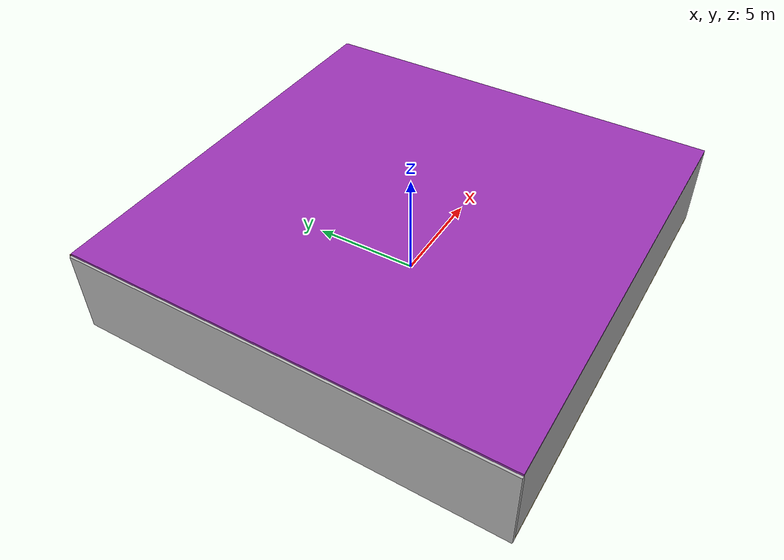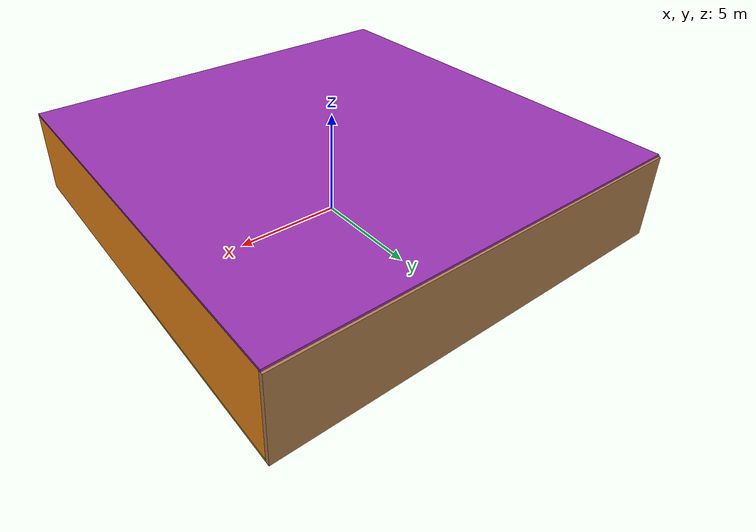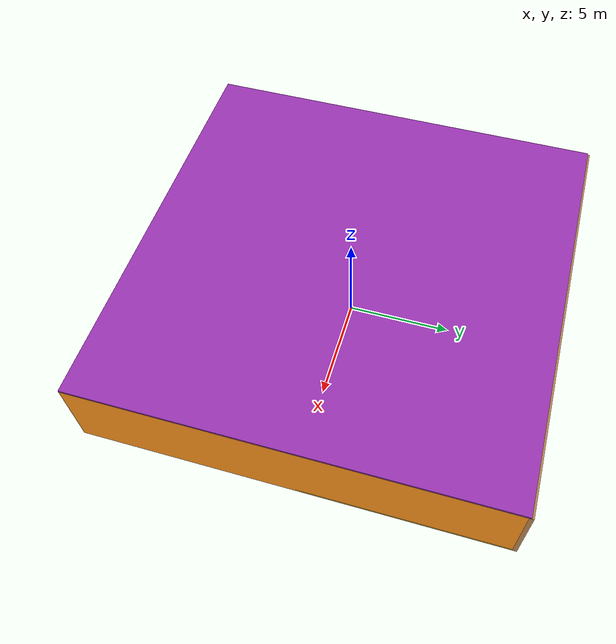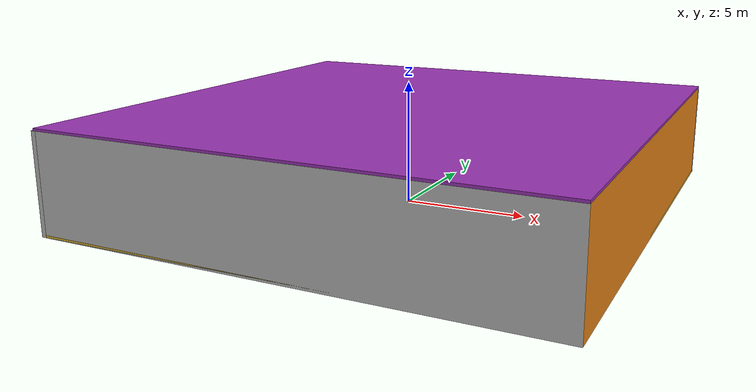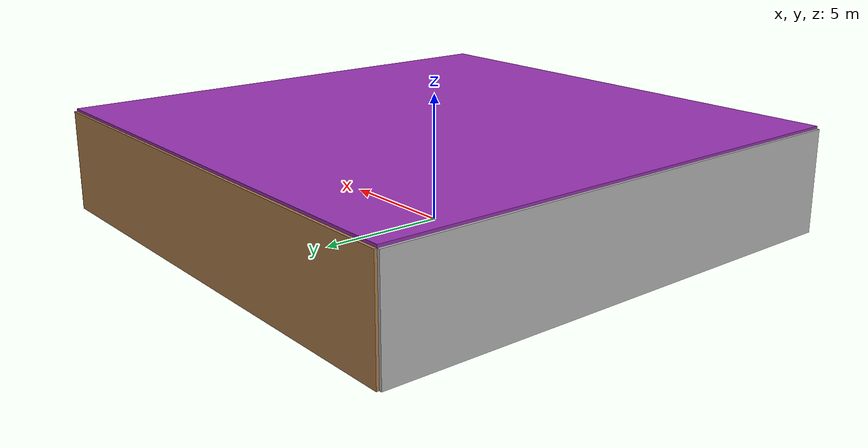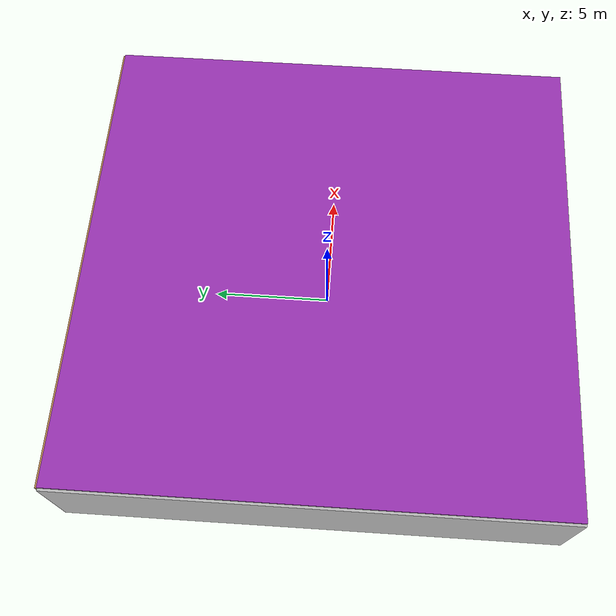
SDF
<sdf version="1.4">
 <world name="default">
  <physics type="ode">
   <max_step_size>0.001</max_step_size>
   <real_time_factor>1</real_time_factor>
   <real_time_update_rate>1000</real_time_update_rate>
   <gravity>0 0 -9.8</gravity>
  </physics>
  <scene><ambient>0.4 0.4 0.4 1</ambient><background>0.7 0.7 0.7 1</background><shadows>1</shadows></scene>
  <model name="Surrounding">
   <static>1</static>
   <link name="Ceiling">
    <collision name="Ceiling_Collision"><geometry><box><size>20 20 0.1</size></box></geometry></collision>
    <visual name="Ceiling_Visual">
     <geometry><box><size>20 20 0.1</size></box></geometry>
     <material>
      <script><uri>file://media/materials/scripts/gazebo.material</uri><name>Gazebo/PurpleGlow</name></script>
     </material>
    </visual>
    <pose>0 0 4.05 0 0 0</pose>
   </link>
   <link name="Wall_South">
    <collision name="Wall_South_Collision">
     <geometry><box><size>20 0 4</size></box></geometry>
     <pose>0 0 2 0 -0 0</pose>
    </collision>
    <visual name="Wall_South_Visual">
     <pose>0 0 2 0 -0 0</pose>
     <geometry><box><size>20 0 4</size></box></geometry>
     <material>
      <script><uri>file://media/materials/scripts/gazebo.material</uri><name>Gazebo/PioneerBody</name></script>
     </material>
    </visual>
    <velocity_decay><linear>0</linear><angular>0</angular></velocity_decay>
    <pose>0 -10 0 0 -0 0</pose>
   </link>
   <link name="Wall_East">
    <collision name="Wall_21_Collision">
     <geometry><box><size>20 0 4</size></box></geometry>
     <pose>0 0 2 0 -0 0</pose>
    </collision>
    <visual name="Wall_21_Visual">
     <pose>0 0 2 0 -0 0</pose>
     <geometry><box><size>20 0 4</size></box></geometry>
     <material>
      <script><uri>file://media/materials/scripts/gazebo.material</uri><name>Gazebo/Orange</name></script>
     </material>
    </visual>
    <velocity_decay><linear>0</linear><angular>0</angular></velocity_decay>
    <pose>10 0 0 0 -0 1.5708</pose>
   </link>
   <link name="Wall_North">
    <collision name="Wall_22_Collision">
     <geometry><box><size>20 0.2 4</size></box></geometry>
     <pose>0 0 2 0 -0 0</pose>
    </collision>
    <visual name="Wall_22_Visual">
     <pose>0 0 2 0 -0 0</pose>
     <geometry><box><size>20 0.2 4</size></box></geometry>
     <material>
      <script><uri>file://media/materials/scripts/gazebo.material</uri><name>Gazebo/WoodFloor</name></script>
     </material>
    </visual>
    <velocity_decay><linear>0</linear><angular>0</angular></velocity_decay>
    <pose>0 10 0 0 -0 0</pose>
   </link>
   <link name="Wall_West">
    <collision name="Wall_23_Collision">
     <geometry><box><size>20 0.2 4</size></box></geometry>
     <pose>0 0 2 0 -0 0</pose>
    </collision>
    <visual name="Wall_23_Visual">
     <pose>0 0 2 0 -0 0</pose>
     <geometry><box><size>20 0.2 4</size></box></geometry>
     <material>
      <script><uri>file://media/materials/scripts/gazebo.material</uri><name>Gazebo/PioneerBody</name></script>
     </material>
    </visual>
    <velocity_decay><linear>0</linear><angular>0</angular></velocity_decay>
    <pose>-10 0 0 0 0 -1.5708</pose>
   </link>
   <link name="Ground_link">
    <collision name="collision">
     <pose>0 0 .05 0 -0 0</pose>
     <geometry><box><size>20 20 0.1</size></box></geometry>
    </collision>
    <visual name="visual">
     <pose>0 0 .05 0 -0 0</pose>
     <geometry><box><size>20 20 0.1</size></box></geometry>
     <material>
      <script><uri>file://media/materials/scripts/gazebo.material</uri><name>Gazebo/Gold</name></script>
     </material>
    </visual>
   </link>
   <static>1</static>
  </model>
  <spherical_coordinates>
   <surface_model>EARTH_WGS84</surface_model>
   <latitude_deg>0</latitude_deg>
   <longitude_deg>0</longitude_deg>
   <elevation>0</elevation>
   <heading_deg>0</heading_deg>
  </spherical_coordinates>
  <light name="lightball_0" type="diffuse">
   <diffuse>0.8 0.8 0.8 1</diffuse>
   <specular>0.2 0.2 0.2 1</specular>
   <attenuation>
    <range>100</range>
    <constant>0.7</constant>
    <linear>0.01</linear>
    <quadratic>0.001</quadratic>
   </attenuation>
   <direction>-0.5 0.1 -0.9</direction>
   <pose>-9.57350012963 -2.24843688439 1.62047453617 0 0 0</pose>
  </light>
  <light name="lightball_1" type="diffuse">
   <diffuse>0.8 0.8 0.8 1</diffuse>
   <specular>0.2 0.2 0.2 1</specular>
   <attenuation>
    <range>100</range>
    <constant>0.7</constant>
    <linear>0.01</linear>
    <quadratic>0.001</quadratic>
   </attenuation>
   <direction>-0.5 0.1 -0.9</direction>
   <pose>-3.5691387432 -5.0201121093 3.70915215766 0 0 0</pose>
  </light>
  <light name="lightball_2" type="diffuse">
   <diffuse>0.8 0.8 0.8 1</diffuse>
   <specular>0.2 0.2 0.2 1</specular>
   <attenuation>
    <range>100</range>
    <constant>0.7</constant>
    <linear>0.01</linear>
    <quadratic>0.001</quadratic>
   </attenuation>
   <direction>-0.5 0.1 -0.9</direction>
   <pose>7.22936966741 -8.84859737223 3.62430818775 0 0 0</pose>
  </light>
  <light name="lightball_3" type="diffuse">
   <diffuse>0.8 0.8 0.8 1</diffuse>
   <specular>0.2 0.2 0.2 1</specular>
   <attenuation>
    <range>100</range>
    <constant>0.7</constant>
    <linear>0.01</linear>
    <quadratic>0.001</quadratic>
   </attenuation>
   <direction>-0.5 0.1 -0.9</direction>
   <pose>-1.85133625251 1.42504649111 1.35709337241 0 0 0</pose>
  </light>
  <light name="lightball_4" type="diffuse">
   <diffuse>0.8 0.8 0.8 1</diffuse>
   <specular>0.2 0.2 0.2 1</specular>
   <attenuation>
    <range>100</range>
    <constant>0.7</constant>
    <linear>0.01</linear>
    <quadratic>0.001</quadratic>
   </attenuation>
   <direction>-0.5 0.1 -0.9</direction>
   <pose>7.5147246706 -5.02907681579 2.84712631463 0 0 0</pose>
  </light>
  <light name="lightball_5" type="diffuse">
   <diffuse>0.8 0.8 0.8 1</diffuse>
   <specular>0.2 0.2 0.2 1</specular>
   <attenuation>
    <range>100</range>
    <constant>0.7</constant>
    <linear>0.01</linear>
    <quadratic>0.001</quadratic>
   </attenuation>
   <direction>-0.5 0.1 -0.9</direction>
   <pose>8.66503740796 8.61407919425 3.31346614705 0 0 0</pose>
  </light>
  <light name="lightball_6" type="diffuse">
   <diffuse>0.8 0.8 0.8 1</diffuse>
   <specular>0.2 0.2 0.2 1</specular>
   <attenuation>
    <range>100</range>
    <constant>0.7</constant>
    <linear>0.01</linear>
    <quadratic>0.001</quadratic>
   </attenuation>
   <direction>-0.5 0.1 -0.9</direction>
   <pose>-1.71244452992 6.05288734854 3.30867330348 0 0 0</pose>
  </light>
  <light name="lightball_7" type="diffuse">
   <diffuse>0.8 0.8 0.8 1</diffuse>
   <specular>0.2 0.2 0.2 1</specular>
   <attenuation>
    <range>100</range>
    <constant>0.7</constant>
    <linear>0.01</linear>
    <quadratic>0.001</quadratic>
   </attenuation>
   <direction>-0.5 0.1 -0.9</direction>
   <pose>-4.47916818247 -4.40948229095 0.923774303915 0 0 0</pose>
  </light>
  <light name="lightball_8" type="diffuse">
   <diffuse>0.8 0.8 0.8 1</diffuse>
   <specular>0.2 0.2 0.2 1</specular>
   <attenuation>
    <range>100</range>
    <constant>0.7</constant>
    <linear>0.01</linear>
    <quadratic>0.001</quadratic>
   </attenuation>
   <direction>-0.5 0.1 -0.9</direction>
   <pose>0.647188253754 -9.36541328113 1.08436232012 0 0 0</pose>
  </light>
  <light name="lightball_9" type="diffuse">
   <diffuse>0.8 0.8 0.8 1</diffuse>
   <specular>0.2 0.2 0.2 1</specular>
   <attenuation>
    <range>100</range>
    <constant>0.7</constant>
    <linear>0.01</linear>
    <quadratic>0.001</quadratic>
   </attenuation>
   <direction>-0.5 0.1 -0.9</direction>
   <pose>6.1547536509 0.726141270934 2.2971909274 0 0 0</pose>
  </light>
  <include><uri>model://table</uri><pose>3.96205330994 1.82586546108 0 0 0 2.95034295284</pose></include>
  <include>
   <uri>model://robocup_3Dsim_goal</uri>
   <pose>7.0887078707 -6.77376050575 0 0 0 0.412515226607</pose>
  </include>
 </world>
</sdf>

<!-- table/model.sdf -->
<sdf version="1.5">
  <model name="table">
    <static>true</static>
    <link name="link">
      <collision name="surface">
        <pose>0 0 1.0 0 0 0</pose>
        <geometry>
          <box>
            <size>1.5 0.8 0.03</size>
          </box>
        </geometry>
        <surface>
          <friction>
            <ode>
              <mu>0.6</mu>
              <mu2>0.6</mu2>
            </ode>
          </friction>
        </surface>
      </collision>
      <visual name="visual1">
        <pose>0 0 1.0 0 0 0</pose>
        <geometry>
          <box>
            <size>1.5 0.8 0.03</size>
          </box>
        </geometry>
        <material>
          <script>
            <uri>model://media/materials/scripts/gazebo.material</uri>
            <name>Gazebo/Wood</name>
          </script>
        </material>
      </visual>
      <collision name="front_left_leg">
        <pose>0.68 0.38 0.5 0 0 0</pose>
        <geometry>
          <cylinder>
            <radius>0.02</radius>
            <length>1.0</length>
          </cylinder>
        </geometry>
      </collision>
      <visual name="front_left_leg">
        <pose>0.68 0.38 0.5 0 0 0</pose>
        <geometry>
          <cylinder>
            <radius>0.02</radius>
            <length>1.0</length>
          </cylinder>
        </geometry>
        <material>
          <script>
            <uri>model://media/materials/scripts/gazebo.material</uri>
            <name>Gazebo/Grey</name>
          </script>
        </material>
      </visual>
      <collision name="front_right_leg">
        <pose>0.68 -0.38 0.5 0 0 0</pose>
        <geometry>
          <cylinder>
            <radius>0.02</radius>
            <length>1.0</length>
          </cylinder>
        </geometry>
      </collision>
      <visual name="front_right_leg">
        <pose>0.68 -0.38 0.5 0 0 0</pose>
        <geometry>
          <cylinder>
            <radius>0.02</radius>
            <length>1.0</length>
          </cylinder>
        </geometry>
        <material>
          <script>
            <uri>model://media/materials/scripts/gazebo.material</uri>
            <name>Gazebo/Grey</name>
          </script>
        </material>
      </visual>
      <collision name="back_right_leg">
        <pose>-0.68 -0.38 0.5 0 0 0</pose>
        <geometry>
          <cylinder>
            <radius>0.02</radius>
            <length>1.0</length>
          </cylinder>
        </geometry>
      </collision>
      <visual name="back_right_leg">
        <pose>-0.68 -0.38 0.5 0 0 0</pose>
        <geometry>
          <cylinder>
            <radius>0.02</radius>
            <length>1.0</length>
          </cylinder>
        </geometry>
        <material>
          <script>
            <uri>model://media/materials/scripts/gazebo.material</uri>
            <name>Gazebo/Grey</name>
          </script>
        </material>
      </visual>
      <collision name="back_left_leg">
        <pose>-0.68 0.38 0.5 0 0 0</pose>
        <geometry>
          <cylinder>
            <radius>0.02</radius>
            <length>1.0</length>
          </cylinder>
        </geometry>
      </collision>
      <visual name="back_left_leg">
        <pose>-0.68 0.38 0.5 0 0 0</pose>
        <geometry>
          <cylinder>
            <radius>0.02</radius>
            <length>1.0</length>
          </cylinder>
        </geometry>
        <material>
          <script>
            <uri>model://media/materials/scripts/gazebo.material</uri>
            <name>Gazebo/Grey</name>
          </script>
        </material>
      </visual>
    </link>
  </model>
</sdf>

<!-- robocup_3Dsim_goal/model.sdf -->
<sdf version="1.5">
  <model name="robocup_3d_goal">
    <static>true</static>
    <link name="left_post">
      <pose>0 1.05 0.45 0 0 0</pose>
      <collision name="collision">
        <geometry>
          <cylinder>
            <radius>0.05</radius>
            <length>0.9</length>
          </cylinder>
        </geometry>
      </collision>
      <visual name="visual">
        <geometry>
          <cylinder>
            <radius>0.05</radius>
            <length>0.9</length>
          </cylinder>
        </geometry>
        <material>
          <script>
            <uri>file://media/materials/scripts/gazebo.material</uri>
            <name>Gazebo/ZincYellow</name>
          </script>
        </material>
      </visual>
    </link>
    <link name="left_support_horiz_lower">
      <pose>0.30 1.05 0.01 0 0 0</pose>
      <collision name="collision">
        <geometry>
          <box>
            <size>0.50 0.02 0.02</size>
          </box>
        </geometry>
      </collision>
      <visual name="visual">
        <geometry>
          <box>
            <size>0.50 0.02 0.02</size>
          </box>
        </geometry>
        <material>
          <script>
            <uri>file://media/materials/scripts/gazebo.material</uri>
            <name>Gazebo/White</name>
          </script>
        </material>
      </visual>
    </link>
    <link name="left_support_horiz_upper">
      <pose>0.30 1.05 0.79 0 0 0</pose>
      <collision name="collision">
        <geometry>
          <box>
            <size>0.50 0.02 0.02</size>
          </box>
        </geometry>
      </collision>
      <visual name="visual">
        <geometry>
          <box>
            <size>0.50 0.02 0.02</size>
          </box>
        </geometry>
        <material>
          <script>
            <uri>file://media/materials/scripts/gazebo.material</uri>
            <name>Gazebo/White</name>
          </script>
        </material>
      </visual>
    </link>
    <link name="left_support_vertical">
      <pose>0.56 1.05 0.4 0 1.5708 0</pose>
      <collision name="collision">
        <geometry>
          <box>
            <size>0.80 0.02 0.02</size>
          </box>
        </geometry>
      </collision>
      <visual name="visual">
        <geometry>
          <box>
            <size>0.80 0.02 0.02</size>
          </box>
        </geometry>
        <material>
          <script>
            <uri>file://media/materials/scripts/gazebo.material</uri>
            <name>Gazebo/White</name>
          </script>
        </material>
      </visual>
    </link>
    <link name="right_support_horiz_lower">
      <pose>0.30 -1.05 0.01 0 0 0</pose>
      <collision name="collision">
        <geometry>
          <box>
            <size>0.50 0.02 0.02</size>
          </box>
        </geometry>
      </collision>
      <visual name="visual">
        <geometry>
          <box>
            <size>0.50 0.02 0.02</size>
          </box>
        </geometry>
        <material>
          <script>
            <uri>file://media/materials/scripts/gazebo.material</uri>
            <name>Gazebo/White</name>
          </script>
        </material>
      </visual>
    </link>
    <link name="right_support_horiz_upper">
      <pose>0.30 -1.05 0.79 0 0 0</pose>
      <collision name="collision">
        <geometry>
          <box>
            <size>0.50 0.02 0.02</size>
          </box>
        </geometry>
      </collision>
      <visual name="visual">
        <geometry>
          <box>
            <size>0.50 0.02 0.02</size>
          </box>
        </geometry>
        <material>
          <script>
            <uri>file://media/materials/scripts/gazebo.material</uri>
            <name>Gazebo/White</name>
          </script>
        </material>
      </visual>
    </link>
    <link name="right_support_vertical">
      <pose>0.56 -1.05 0.4 0 1.5708 0</pose>
      <collision name="collision">
        <geometry>
          <box>
            <size>0.80 0.02 0.02</size>
          </box>
        </geometry>
      </collision>
      <visual name="visual">
        <geometry>
          <box>
            <size>0.80 0.02 0.02</size>
          </box>
        </geometry>
        <material>
          <script>
            <uri>file://media/materials/scripts/gazebo.material</uri>
            <name>Gazebo/White</name>
          </script>
        </material>
      </visual>
    </link>
    <link name="center_support_horiz_lower">
      <pose>0.56 0 0.01 0 1.5708 0</pose>
      <collision name="collision">
        <geometry>
          <box>
            <size>0.02 2.08 0.02</size>
          </box>
        </geometry>
      </collision>
      <visual name="visual">
        <geometry>
          <box>
            <size>0.02 2.08 0.02</size>
          </box>
        </geometry>
        <material>
          <script>
            <uri>file://media/materials/scripts/gazebo.material</uri>
            <name>Gazebo/White</name>
          </script>
        </material>
      </visual>
    </link>
    <link name="center_support_horiz_upper">
      <pose>0.56 0 0.79 0 1.5708 0</pose>
      <collision name="collision">
        <geometry>
          <box>
            <size>0.02 2.08 0.02</size>
          </box>
        </geometry>
      </collision>
      <visual name="visual">
        <geometry>
          <box>
            <size>0.02 2.08 0.02</size>
          </box>
        </geometry>
        <material>
          <script>
            <uri>file://media/materials/scripts/gazebo.material</uri>
            <name>Gazebo/White</name>
          </script>
        </material>
      </visual>
    </link>
    <link name="right_post">
      <pose>0 -1.05 0.45 0 0 0</pose>
      <collision name="collision">
        <geometry>
          <cylinder>
            <radius>0.05</radius>
            <length>0.9</length>
          </cylinder>
        </geometry>
      </collision>
      <visual name="visual">
        <geometry>
          <cylinder>
            <radius>0.05</radius>
            <length>0.9</length>
          </cylinder>
        </geometry>
        <material>
          <script>
            <uri>file://media/materials/scripts/gazebo.material</uri>
            <name>Gazebo/ZincYellow</name>
          </script>
        </material>
      </visual>
    </link>
    <link name="crossbar">
      <pose>0 0 0.85 1.57 1.57 0</pose>
      <collision name="collision">
        <geometry>
          <cylinder>
            <radius>0.05</radius>
            <length>2.0</length>
          </cylinder>
        </geometry>
      </collision>
      <visual name="visual">
        <geometry>
          <cylinder>
            <radius>0.05</radius>
            <length>2.0</length>
          </cylinder>
        </geometry>
        <material>
          <script>
            <uri>file://media/materials/scripts/gazebo.material</uri>
            <name>Gazebo/ZincYellow</name>
          </script>
        </material>
      </visual>
    </link>
    <link name="center_net">
      <pose>0.56 0 0.40 0 0 0</pose>
      <collision name="collision">
        <geometry>
          <box>
            <size>0.01 2.1 0.80</size>
          </box>
        </geometry>
      </collision>
      <visual name="visual">
        <geometry>
          <box>
            <size>0.01 2.1 0.80</size>
          </box>
        </geometry>
        <material>
          <script>
            <uri>model://../model_source/models/robocup09_spl_field/materials/scripts/</uri>
            <uri>model://../model_source/models/robocup09_spl_field/materials/textures/</uri>
            <name>RoboCup/Net</name>
          </script>
        </material>
      </visual>
    </link>
    <link name="left_net">
      <pose>0.30 1.05 0.40 0 0 0</pose>
      <collision name="collision">
        <geometry>
          <box>
            <size>0.50 0.01 0.76</size>
          </box>
        </geometry>
      </collision>
      <visual name="visual">
        <geometry>
          <box>
            <size>0.50 0.01 0.76</size>
          </box>
        </geometry>
        <material>
          <script>
            <uri>model://../model_source/models/robocup09_spl_field/materials/scripts/</uri>
            <uri>model://../model_source/models/robocup09_spl_field/materials/textures/</uri>
            <name>RoboCup/Net</name>
          </script>
        </material>
      </visual>
    </link>
    <link name="right_net">
      <pose>0.30 -1.05 0.40 0 0 0</pose>
      <collision name="collision">
        <geometry>
          <box>
            <size>0.50 0.01 0.76</size>
          </box>
        </geometry>
      </collision>
      <visual name="visual">
        <geometry>
          <box>
            <size>0.50 0.01 0.76</size>
          </box>
        </geometry>
        <material>
          <script>
            <uri>model://../model_source/models/robocup09_spl_field/materials/scripts/</uri>
            <uri>model://../model_source/models/robocup09_spl_field/materials/textures/</uri>
            <name>RoboCup/Net</name>
          </script>
        </material>
      </visual>
    </link>
  </model>
</sdf>
